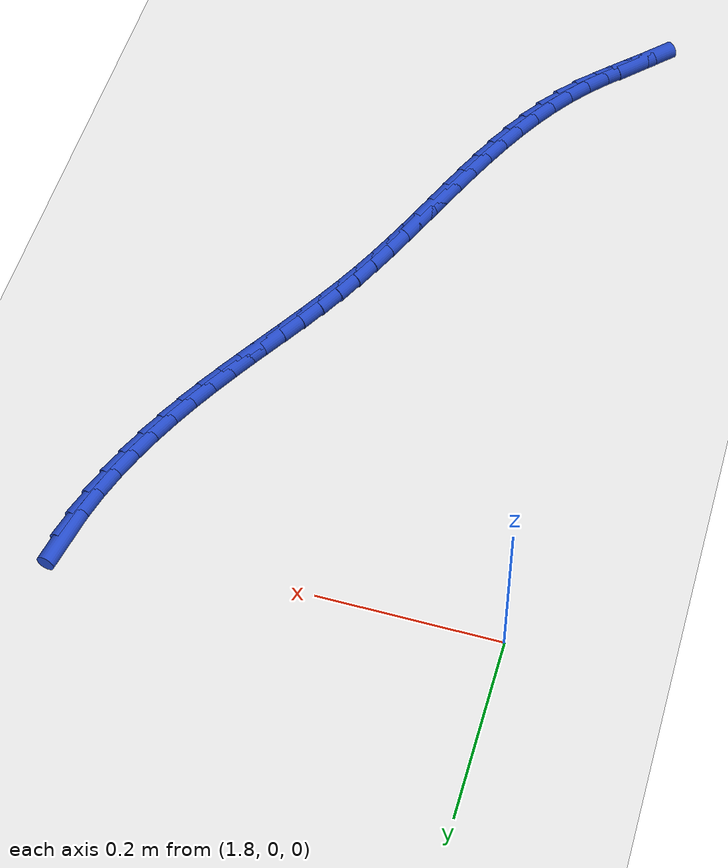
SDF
<sdf version="1.6">
 <world name="default">
  <model name="ground_plane">
   <static>1</static>
   <link name="link">
    <collision name="collision">
     <geometry><plane><normal>0 0 1</normal><size>100 100</size></plane></geometry>
     <surface><friction><ode><mu>100</mu><mu2>50</mu2></ode></friction></surface>
    </collision>
    <visual name="visual">
     <cast_shadows>0</cast_shadows>
     <geometry><plane><normal>0 0 1</normal><size>100 100</size></plane></geometry>
     <material>
      <script><uri>file://media/materials/scripts/gazebo.material</uri><name>Gazebo/WhiteGlow</name></script>
     </material>
    </visual>
   </link>
  </model>
  <model name="line">
   <link name="link_136">
    <pose>2.268154966940458 0.004674211948932614 0.01 0 1.57 1.3916112568664796</pose>
    <collision name="collision">
     <geometry><cylinder><radius>0.01</radius><length>0.08</length></cylinder></geometry>
    </collision>
    <visual name="visual">
     <material>
      <script><name>Gazebo/Blue</name><uri>file://media/materials/scripts/gazebo.material</uri></script>
     </material>
     <geometry><cylinder><radius>0.01</radius><length>0.08</length></cylinder></geometry>
    </visual>
   </link>
   <link name="link_137">
    <pose>2.2628690959611735 -0.024508899435121224 0.01 0 1.57 1.3265910428410663</pose>
    <collision name="collision">
     <geometry><cylinder><radius>0.01</radius><length>0.08</length></cylinder></geometry>
    </collision>
    <visual name="visual">
     <material>
      <script><name>Gazebo/Blue</name><uri>file://media/materials/scripts/gazebo.material</uri></script>
     </material>
     <geometry><cylinder><radius>0.01</radius><length>0.08</length></cylinder></geometry>
    </visual>
   </link>
   <link name="link_138">
    <pose>2.2556171559891833 -0.05361229969599311 0.01 0 1.57 1.2695446967971638</pose>
    <collision name="collision">
     <geometry><cylinder><radius>0.01</radius><length>0.08</length></cylinder></geometry>
    </collision>
    <visual name="visual">
     <material>
      <script><name>Gazebo/Blue</name><uri>file://media/materials/scripts/gazebo.material</uri></script>
     </material>
     <geometry><cylinder><radius>0.01</radius><length>0.08</length></cylinder></geometry>
    </visual>
   </link>
   <link name="link_139">
    <pose>2.2466496658301094 -0.08247375483695782 0.01 0 1.57 1.2194076932440692</pose>
    <collision name="collision">
     <geometry><cylinder><radius>0.01</radius><length>0.08</length></cylinder></geometry>
    </collision>
    <visual name="visual">
     <material>
      <script><name>Gazebo/Blue</name><uri>file://media/materials/scripts/gazebo.material</uri></script>
     </material>
     <geometry><cylinder><radius>0.01</radius><length>0.08</length></cylinder></geometry>
    </visual>
   </link>
   <link name="link_140">
    <pose>2.2362171442895753 -0.11093103086129283 0.01 0 1.57 1.1752160123062383</pose>
    <collision name="collision">
     <geometry><cylinder><radius>0.01</radius><length>0.08</length></cylinder></geometry>
    </collision>
    <visual name="visual">
     <material>
      <script><name>Gazebo/Blue</name><uri>file://media/materials/scripts/gazebo.material</uri></script>
     </material>
     <geometry><cylinder><radius>0.01</radius><length>0.08</length></cylinder></geometry>
    </visual>
   </link>
   <link name="link_141">
    <pose>2.2245701101732043 -0.13882189377227558 0.01 0 1.57 1.1361261382414036</pose>
    <collision name="collision">
     <geometry><cylinder><radius>0.01</radius><length>0.08</length></cylinder></geometry>
    </collision>
    <visual name="visual">
     <material>
      <script><name>Gazebo/Blue</name><uri>file://media/materials/scripts/gazebo.material</uri></script>
     </material>
     <geometry><cylinder><radius>0.01</radius><length>0.08</length></cylinder></geometry>
    </visual>
   </link>
   <link name="link_142">
    <pose>2.211959082286619 -0.16598410957318094 0.01 0 1.57 1.1015436966334824</pose>
    <collision name="collision">
     <geometry><cylinder><radius>0.01</radius><length>0.08</length></cylinder></geometry>
    </collision>
    <visual name="visual">
     <material>
      <script><name>Gazebo/Blue</name><uri>file://media/materials/scripts/gazebo.material</uri></script>
     </material>
     <geometry><cylinder><radius>0.01</radius><length>0.08</length></cylinder></geometry>
    </visual>
   </link>
   <link name="link_143">
    <pose>2.198626999904885 -0.1922787795006843 0.01 0 1.57 1.0722783441945</pose>
    <collision name="collision">
     <geometry><cylinder><radius>0.01</radius><length>0.08</length></cylinder></geometry>
    </collision>
    <visual name="visual">
     <material>
      <script><name>Gazebo/Blue</name><uri>file://media/materials/scripts/gazebo.material</uri></script>
     </material>
     <geometry><cylinder><radius>0.01</radius><length>0.08</length></cylinder></geometry>
    </visual>
   </link>
   <link name="link_144">
    <pose>2.184752007879211 -0.2177664885183196 0.01 0 1.57 1.0493199531164221</pose>
    <collision name="collision">
     <geometry><cylinder><radius>0.01</radius><length>0.08</length></cylinder></geometry>
    </collision>
    <visual name="visual">
     <material>
      <script><name>Gazebo/Blue</name><uri>file://media/materials/scripts/gazebo.material</uri></script>
     </material>
     <geometry><cylinder><radius>0.01</radius><length>0.08</length></cylinder></geometry>
    </visual>
   </link>
   <link name="link_145">
    <pose>2.170479380649308 -0.24260902030086007 0.01 0 1.57 1.033119457058473</pose>
    <collision name="collision">
     <geometry><cylinder><radius>0.01</radius><length>0.08</length></cylinder></geometry>
    </collision>
    <visual name="visual">
     <material>
      <script><name>Gazebo/Blue</name><uri>file://media/materials/scripts/gazebo.material</uri></script>
     </material>
     <geometry><cylinder><radius>0.01</radius><length>0.08</length></cylinder></geometry>
    </visual>
   </link>
   <link name="link_146">
    <pose>2.1559541353384577 -0.266968950727661 0.01 0 1.57 1.0240117155500168</pose>
    <collision name="collision">
     <geometry><cylinder><radius>0.01</radius><length>0.08</length></cylinder></geometry>
    </collision>
    <visual name="visual">
     <material>
      <script><name>Gazebo/Blue</name><uri>file://media/materials/scripts/gazebo.material</uri></script>
     </material>
     <geometry><cylinder><radius>0.01</radius><length>0.08</length></cylinder></geometry>
    </visual>
   </link>
   <link name="link_147">
    <pose>2.1413212890699422 -0.2910088556780806 0.01 0 1.57 1.0222287462480681</pose>
    <collision name="collision">
     <geometry><cylinder><radius>0.01</radius><length>0.08</length></cylinder></geometry>
    </collision>
    <visual name="visual">
     <material>
      <script><name>Gazebo/Blue</name><uri>file://media/materials/scripts/gazebo.material</uri></script>
     </material>
     <geometry><cylinder><radius>0.01</radius><length>0.08</length></cylinder></geometry>
    </visual>
   </link>
   <link name="link_148">
    <pose>2.1267258589670464 -0.3148913110314744 0.01 0 1.57 1.0279042053564595</pose>
    <collision name="collision">
     <geometry><cylinder><radius>0.01</radius><length>0.08</length></cylinder></geometry>
    </collision>
    <visual name="visual">
     <material>
      <script><name>Gazebo/Blue</name><uri>file://media/materials/scripts/gazebo.material</uri></script>
     </material>
     <geometry><cylinder><radius>0.01</radius><length>0.08</length></cylinder></geometry>
    </visual>
   </link>
   <link name="link_149">
    <pose>2.112312862153052 -0.3387788926672005 0.01 0 1.57 1.0410703626560134</pose>
    <collision name="collision">
     <geometry><cylinder><radius>0.01</radius><length>0.08</length></cylinder></geometry>
    </collision>
    <visual name="visual">
     <material>
      <script><name>Gazebo/Blue</name><uri>file://media/materials/scripts/gazebo.material</uri></script>
     </material>
     <geometry><cylinder><radius>0.01</radius><length>0.08</length></cylinder></geometry>
    </visual>
   </link>
   <link name="link_150">
    <pose>2.098227315751242 -0.3628341764646144 0.01 0 1.57 1.0616462500647537</pose>
    <collision name="collision">
     <geometry><cylinder><radius>0.01</radius><length>0.08</length></cylinder></geometry>
    </collision>
    <visual name="visual">
     <material>
      <script><name>Gazebo/Blue</name><uri>file://media/materials/scripts/gazebo.material</uri></script>
     </material>
     <geometry><cylinder><radius>0.01</radius><length>0.08</length></cylinder></geometry>
    </visual>
   </link>
   <link name="link_151">
    <pose>2.0846142368849003 -0.38721973830307355 0.01 0 1.57 1.0894106425724521</pose>
    <collision name="collision">
     <geometry><cylinder><radius>0.01</radius><length>0.08</length></cylinder></geometry>
    </collision>
    <visual name="visual">
     <material>
      <script><name>Gazebo/Blue</name><uri>file://media/materials/scripts/gazebo.material</uri></script>
     </material>
     <geometry><cylinder><radius>0.01</radius><length>0.08</length></cylinder></geometry>
    </visual>
   </link>
   <link name="link_152">
    <pose>2.0716184908765185 -0.4120980087766216 0.01 0 1.57 1.1204878992011837</pose>
    <collision name="collision">
     <geometry><cylinder><radius>0.01</radius><length>0.08</length></cylinder></geometry>
    </collision>
    <visual name="visual">
     <material>
      <script><name>Gazebo/Blue</name><uri>file://media/materials/scripts/gazebo.material</uri></script>
     </material>
     <geometry><cylinder><radius>0.01</radius><length>0.08</length></cylinder></geometry>
    </visual>
   </link>
   <link name="link_153">
    <pose>2.0593095958071057 -0.43755930523432784 0.01 0 1.57 1.1455801384801532</pose>
    <collision name="collision">
     <geometry><cylinder><radius>0.01</radius><length>0.08</length></cylinder></geometry>
    </collision>
    <visual name="visual">
     <material>
      <script><name>Gazebo/Blue</name><uri>file://media/materials/scripts/gazebo.material</uri></script>
     </material>
     <geometry><cylinder><radius>0.01</radius><length>0.08</length></cylinder></geometry>
    </visual>
   </link>
   <link name="link_154">
    <pose>2.0475600708763824 -0.4635054015788687 0.01 0 1.57 1.1634324738627642</pose>
    <collision name="collision">
     <geometry><cylinder><radius>0.01</radius><length>0.08</length></cylinder></geometry>
    </collision>
    <visual name="visual">
     <material>
      <script><name>Gazebo/Blue</name><uri>file://media/materials/scripts/gazebo.material</uri></script>
     </material>
     <geometry><cylinder><radius>0.01</radius><length>0.08</length></cylinder></geometry>
    </visual>
   </link>
   <link name="link_155">
    <pose>2.0362106380299676 -0.48980763923616827 0.01 0 1.57 1.1742538735678163</pose>
    <collision name="collision">
     <geometry><cylinder><radius>0.01</radius><length>0.08</length></cylinder></geometry>
    </collision>
    <visual name="visual">
     <material>
      <script><name>Gazebo/Blue</name><uri>file://media/materials/scripts/gazebo.material</uri></script>
     </material>
     <geometry><cylinder><radius>0.01</radius><length>0.08</length></cylinder></geometry>
    </visual>
   </link>
   <link name="link_156">
    <pose>2.025102019213477 -0.5163373596321534 0.01 0 1.57 1.178187687851221</pose>
    <collision name="collision">
     <geometry><cylinder><radius>0.01</radius><length>0.08</length></cylinder></geometry>
    </collision>
    <visual name="visual">
     <material>
      <script><name>Gazebo/Blue</name><uri>file://media/materials/scripts/gazebo.material</uri></script>
     </material>
     <geometry><cylinder><radius>0.01</radius><length>0.08</length></cylinder></geometry>
    </visual>
   </link>
   <link name="link_157">
    <pose>2.0140749363725305 -0.5429659041927479 0.01 0 1.57 1.1752997303455754</pose>
    <collision name="collision">
     <geometry><cylinder><radius>0.01</radius><length>0.08</length></cylinder></geometry>
    </collision>
    <visual name="visual">
     <material>
      <script><name>Gazebo/Blue</name><uri>file://media/materials/scripts/gazebo.material</uri></script>
     </material>
     <geometry><cylinder><radius>0.01</radius><length>0.08</length></cylinder></geometry>
    </visual>
   </link>
   <link name="link_158">
    <pose>2.002970111452746 -0.5695646143438791 0.01 0 1.57 1.1655747297442984</pose>
    <collision name="collision">
     <geometry><cylinder><radius>0.01</radius><length>0.08</length></cylinder></geometry>
    </collision>
    <visual name="visual">
     <material>
      <script><name>Gazebo/Blue</name><uri>file://media/materials/scripts/gazebo.material</uri></script>
     </material>
     <geometry><cylinder><radius>0.01</radius><length>0.08</length></cylinder></geometry>
    </visual>
   </link>
   <link name="link_159">
    <pose>1.99162826639974 -0.5960048315114702 0.01 0 1.57 1.1489201658642476</pose>
    <collision name="collision">
     <geometry><cylinder><radius>0.01</radius><length>0.08</length></cylinder></geometry>
    </collision>
    <visual name="visual">
     <material>
      <script><name>Gazebo/Blue</name><uri>file://media/materials/scripts/gazebo.material</uri></script>
     </material>
     <geometry><cylinder><radius>0.01</radius><length>0.08</length></cylinder></geometry>
    </visual>
   </link>
   <link name="link_160">
    <pose>1.9798901231591317 -0.6221578971214479 0.01 0 1.57 1.1251779451805404</pose>
    <collision name="collision">
     <geometry><cylinder><radius>0.01</radius><length>0.08</length></cylinder></geometry>
    </collision>
    <visual name="visual">
     <material>
      <script><name>Gazebo/Blue</name><uri>file://media/materials/scripts/gazebo.material</uri></script>
     </material>
     <geometry><cylinder><radius>0.01</radius><length>0.08</length></cylinder></geometry>
    </visual>
   </link>
   <link name="link_161">
    <pose>1.9675964036765383 -0.6478951525997383 0.01 0 1.57 1.0941457142170274</pose>
    <collision name="collision">
     <geometry><cylinder><radius>0.01</radius><length>0.08</length></cylinder></geometry>
    </collision>
    <visual name="visual">
     <material>
      <script><name>Gazebo/Blue</name><uri>file://media/materials/scripts/gazebo.material</uri></script>
     </material>
     <geometry><cylinder><radius>0.01</radius><length>0.08</length></cylinder></geometry>
    </visual>
   </link>
   <link name="link_162">
    <pose>1.9545878298975774 -0.6730879393722651 0.01 0 1.57 1.0556106674204762</pose>
    <collision name="collision">
     <geometry><cylinder><radius>0.01</radius><length>0.08</length></cylinder></geometry>
    </collision>
    <visual name="visual">
     <material>
      <script><name>Gazebo/Blue</name><uri>file://media/materials/scripts/gazebo.material</uri></script>
     </material>
     <geometry><cylinder><radius>0.01</radius><length>0.08</length></cylinder></geometry>
    </visual>
   </link>
   <link name="link_163">
    <pose>1.9407051237678672 -0.6976075988649554 0.01 0 1.57 1.0093990689524381</pose>
    <collision name="collision">
     <geometry><cylinder><radius>0.01</radius><length>0.08</length></cylinder></geometry>
    </collision>
    <visual name="visual">
     <material>
      <script><name>Gazebo/Blue</name><uri>file://media/materials/scripts/gazebo.material</uri></script>
     </material>
     <geometry><cylinder><radius>0.01</radius><length>0.08</length></cylinder></geometry>
    </visual>
   </link>
   <link name="link_164">
    <pose>1.9257890072330257 -0.7213254725037328 0.01 0 1.57 0.9554436213700153</pose>
    <collision name="collision">
     <geometry><cylinder><radius>0.01</radius><length>0.08</length></cylinder></geometry>
    </collision>
    <visual name="visual">
     <material>
      <script><name>Gazebo/Blue</name><uri>file://media/materials/scripts/gazebo.material</uri></script>
     </material>
     <geometry><cylinder><radius>0.01</radius><length>0.08</length></cylinder></geometry>
    </visual>
   </link>
   <link name="link_165">
    <pose>1.909680202238671 -0.7441129017145249 0.01 0 1.57 0.8938672303730232</pose>
    <collision name="collision">
     <geometry><cylinder><radius>0.01</radius><length>0.08</length></cylinder></geometry>
    </collision>
    <visual name="visual">
     <material>
      <script><name>Gazebo/Blue</name><uri>file://media/materials/scripts/gazebo.material</uri></script>
     </material>
     <geometry><cylinder><radius>0.01</radius><length>0.08</length></cylinder></geometry>
    </visual>
   </link>
   <link name="link_166">
    <pose>1.8922194307304205 -0.7658412279232549 0.01 0 1.57 0.8274235464964407</pose>
    <collision name="collision">
     <geometry><cylinder><radius>0.01</radius><length>0.08</length></cylinder></geometry>
    </collision>
    <visual name="visual">
     <material>
      <script><name>Gazebo/Blue</name><uri>file://media/materials/scripts/gazebo.material</uri></script>
     </material>
     <geometry><cylinder><radius>0.01</radius><length>0.08</length></cylinder></geometry>
    </visual>
   </link>
   <link name="link_167">
    <pose>1.8732938112818962 -0.7864283643428434 0.01 0 1.57 0.7816729767635303</pose>
    <collision name="collision">
     <geometry><cylinder><radius>0.01</radius><length>0.08</length></cylinder></geometry>
    </collision>
    <visual name="visual">
     <material>
      <script><name>Gazebo/Blue</name><uri>file://media/materials/scripts/gazebo.material</uri></script>
     </material>
     <geometry><cylinder><radius>0.01</radius><length>0.08</length></cylinder></geometry>
    </visual>
   </link>
   <link name="link_168">
    <pose>1.8532850132081697 -0.8062886419816115 0.01 0 1.57 0.7714040787987613</pose>
    <collision name="collision">
     <geometry><cylinder><radius>0.01</radius><length>0.08</length></cylinder></geometry>
    </collision>
    <visual name="visual">
     <material>
      <script><name>Gazebo/Blue</name><uri>file://media/materials/scripts/gazebo.material</uri></script>
     </material>
     <geometry><cylinder><radius>0.01</radius><length>0.08</length></cylinder></geometry>
    </visual>
   </link>
   <link name="link_169">
    <pose>1.8328737065637173 -0.8261365213905988 0.01 0 1.57 0.793716254456279</pose>
    <collision name="collision">
     <geometry><cylinder><radius>0.01</radius><length>0.08</length></cylinder></geometry>
    </collision>
    <visual name="visual">
     <material>
      <script><name>Gazebo/Blue</name><uri>file://media/materials/scripts/gazebo.material</uri></script>
     </material>
     <geometry><cylinder><radius>0.01</radius><length>0.08</length></cylinder></geometry>
    </visual>
   </link>
  </model>
 </world>
</sdf>
